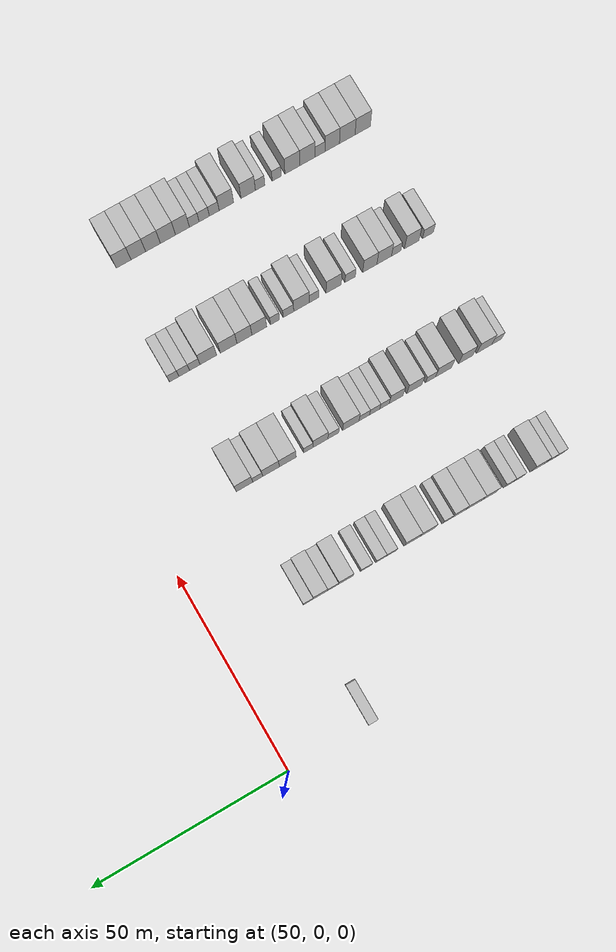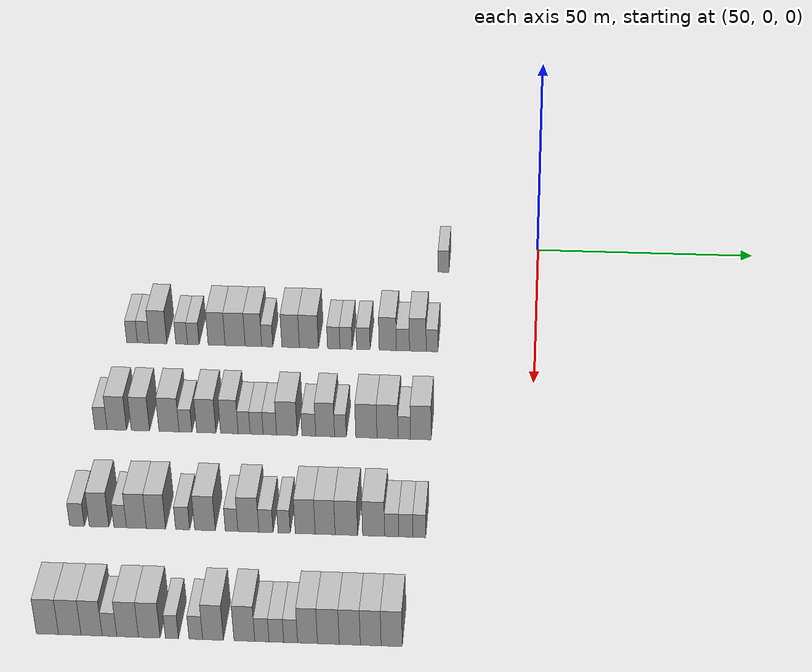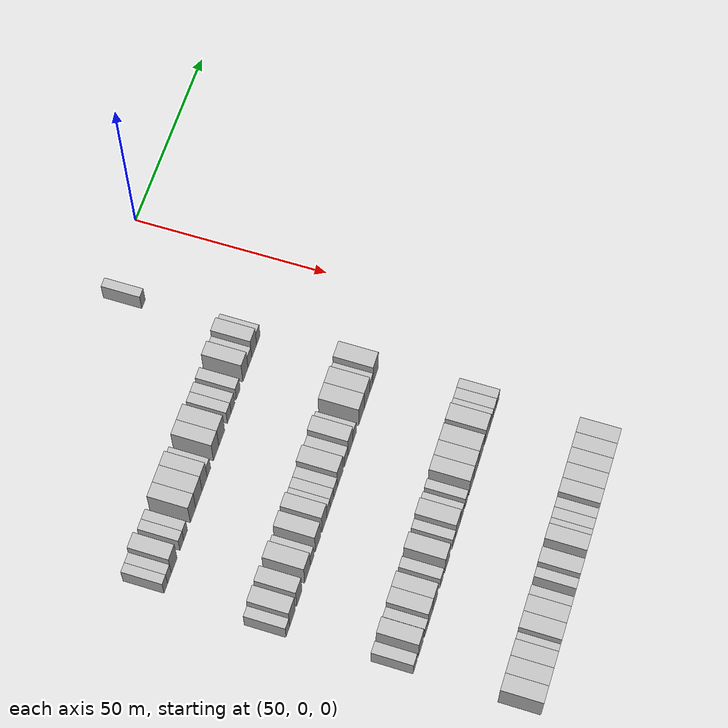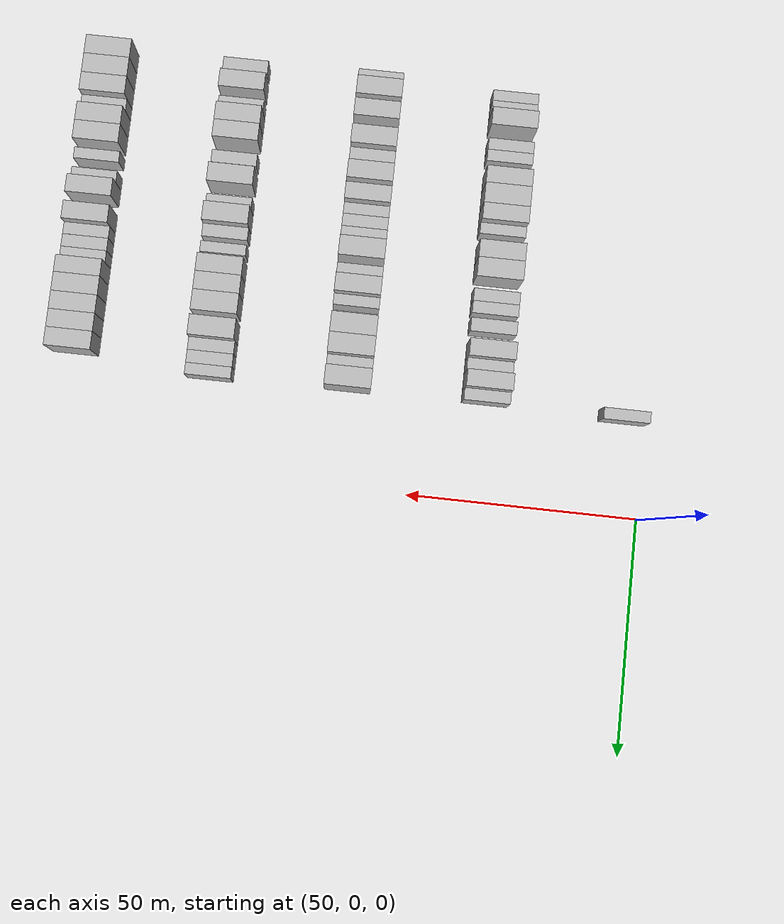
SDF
<sdf version="1.6">
 <world name="default">
  <model name="building_337">
   <static>1</static>
   <pose>55.0000 -21.7084 0 0.000000 0.000000 0.000000</pose>
   <link name="link">
    <pose>0 0 3.00 0 0 0</pose>
    <collision name="collision"><geometry><box><size>10.0000 2.4759 6.0000</size></box></geometry></collision>
    <visual name="visual">
     <cast_shadows>0</cast_shadows>
     <geometry><box><size>10.0000 2.4759 6.0000</size></box></geometry>
     <material>
      <script>
       <uri>model://HANNAS_wall/materials/scripts</uri>
       <uri>model://HANNAS_wall/materials/textures</uri>
       <name>vrc/HANNAS_wall</name>
      </script>
     </material>
    </visual>
   </link>
  </model>
  <model name="building_548">
   <static>1</static>
   <pose>85.0000 -89.1896 0 0.000000 0.000000 0.000000</pose>
   <link name="link">
    <pose>0 0 3.00 0 0 0</pose>
    <collision name="collision"><geometry><box><size>10.0000 2.4117 6.0000</size></box></geometry></collision>
    <visual name="visual">
     <cast_shadows>0</cast_shadows>
     <geometry><box><size>10.0000 2.4117 6.0000</size></box></geometry>
     <material>
      <script>
       <uri>model://HANNAS_wall/materials/scripts</uri>
       <uri>model://HANNAS_wall/materials/textures</uri>
       <name>vrc/HANNAS_wall</name>
      </script>
     </material>
    </visual>
   </link>
  </model>
  <model name="building_549">
   <static>1</static>
   <pose>85.0000 -86.6814 0 0.000000 0.000000 0.000000</pose>
   <link name="link">
    <pose>0 0 3.00 0 0 0</pose>
    <collision name="collision"><geometry><box><size>10.0000 2.6049 6.0000</size></box></geometry></collision>
    <visual name="visual">
     <cast_shadows>0</cast_shadows>
     <geometry><box><size>10.0000 2.6049 6.0000</size></box></geometry>
     <material>
      <script>
       <uri>model://HANNAS_wall/materials/scripts</uri>
       <uri>model://HANNAS_wall/materials/textures</uri>
       <name>vrc/HANNAS_wall</name>
      </script>
     </material>
    </visual>
   </link>
  </model>
  <model name="building_550">
   <static>1</static>
   <pose>85.0000 -83.4179 0 0.000000 0.000000 0.000000</pose>
   <link name="link">
    <pose>0 0 4.50 0 0 0</pose>
    <collision name="collision"><geometry><box><size>10.0000 3.9220 9.0000</size></box></geometry></collision>
    <visual name="visual">
     <cast_shadows>0</cast_shadows>
     <geometry><box><size>10.0000 3.9220 9.0000</size></box></geometry>
     <material>
      <script>
       <uri>model://HANNAS_wall/materials/scripts</uri>
       <uri>model://HANNAS_wall/materials/textures</uri>
       <name>vrc/HANNAS_wall</name>
      </script>
     </material>
    </visual>
   </link>
  </model>
  <model name="building_551">
   <static>1</static>
   <pose>85.0000 -78.1495 0 0.000000 0.000000 0.000000</pose>
   <link name="link">
    <pose>0 0 3.00 0 0 0</pose>
    <collision name="collision"><geometry><box><size>10.0000 2.6149 6.0000</size></box></geometry></collision>
    <visual name="visual">
     <cast_shadows>0</cast_shadows>
     <geometry><box><size>10.0000 2.6149 6.0000</size></box></geometry>
     <material>
      <script>
       <uri>model://HANNAS_wall/materials/scripts</uri>
       <uri>model://HANNAS_wall/materials/textures</uri>
       <name>vrc/HANNAS_wall</name>
      </script>
     </material>
    </visual>
   </link>
  </model>
  <model name="building_552">
   <static>1</static>
   <pose>85.0000 -75.5503 0 0.000000 0.000000 0.000000</pose>
   <link name="link">
    <pose>0 0 3.00 0 0 0</pose>
    <collision name="collision"><geometry><box><size>10.0000 2.5836 6.0000</size></box></geometry></collision>
    <visual name="visual">
     <cast_shadows>0</cast_shadows>
     <geometry><box><size>10.0000 2.5836 6.0000</size></box></geometry>
     <material>
      <script>
       <uri>model://HANNAS_wall/materials/scripts</uri>
       <uri>model://HANNAS_wall/materials/textures</uri>
       <name>vrc/HANNAS_wall</name>
      </script>
     </material>
    </visual>
   </link>
  </model>
  <model name="building_553">
   <static>1</static>
   <pose>85.0000 -70.3667 0 0.000000 0.000000 0.000000</pose>
   <link name="link">
    <pose>0 0 4.50 0 0 0</pose>
    <collision name="collision"><geometry><box><size>10.0000 3.7837 9.0000</size></box></geometry></collision>
    <visual name="visual">
     <cast_shadows>0</cast_shadows>
     <geometry><box><size>10.0000 3.7837 9.0000</size></box></geometry>
     <material>
      <script>
       <uri>model://HANNAS_wall/materials/scripts</uri>
       <uri>model://HANNAS_wall/materials/textures</uri>
       <name>vrc/HANNAS_wall</name>
      </script>
     </material>
    </visual>
   </link>
  </model>
  <model name="building_554">
   <static>1</static>
   <pose>85.0000 -66.2476 0 0.000000 0.000000 0.000000</pose>
   <link name="link">
    <pose>0 0 4.50 0 0 0</pose>
    <collision name="collision"><geometry><box><size>10.0000 4.4544 9.0000</size></box></geometry></collision>
    <visual name="visual">
     <cast_shadows>0</cast_shadows>
     <geometry><box><size>10.0000 4.4544 9.0000</size></box></geometry>
     <material>
      <script>
       <uri>model://HANNAS_wall/materials/scripts</uri>
       <uri>model://HANNAS_wall/materials/textures</uri>
       <name>vrc/HANNAS_wall</name>
      </script>
     </material>
    </visual>
   </link>
  </model>
  <model name="building_555">
   <static>1</static>
   <pose>85.0000 -62.1873 0 0.000000 0.000000 0.000000</pose>
   <link name="link">
    <pose>0 0 4.50 0 0 0</pose>
    <collision name="collision"><geometry><box><size>10.0000 3.6662 9.0000</size></box></geometry></collision>
    <visual name="visual">
     <cast_shadows>0</cast_shadows>
     <geometry><box><size>10.0000 3.6662 9.0000</size></box></geometry>
     <material>
      <script>
       <uri>model://HANNAS_wall/materials/scripts</uri>
       <uri>model://HANNAS_wall/materials/textures</uri>
       <name>vrc/HANNAS_wall</name>
      </script>
     </material>
    </visual>
   </link>
  </model>
  <model name="building_556">
   <static>1</static>
   <pose>85.0000 -59.1198 0 0.000000 0.000000 0.000000</pose>
   <link name="link">
    <pose>0 0 3.00 0 0 0</pose>
    <collision name="collision"><geometry><box><size>10.0000 2.4690 6.0000</size></box></geometry></collision>
    <visual name="visual">
     <cast_shadows>0</cast_shadows>
     <geometry><box><size>10.0000 2.4690 6.0000</size></box></geometry>
     <material>
      <script>
       <uri>model://HANNAS_wall/materials/scripts</uri>
       <uri>model://HANNAS_wall/materials/textures</uri>
       <name>vrc/HANNAS_wall</name>
      </script>
     </material>
    </visual>
   </link>
  </model>
  <model name="building_557">
   <static>1</static>
   <pose>85.0000 -53.9373 0 0.000000 0.000000 0.000000</pose>
   <link name="link">
    <pose>0 0 4.50 0 0 0</pose>
    <collision name="collision"><geometry><box><size>10.0000 3.8958 9.0000</size></box></geometry></collision>
    <visual name="visual">
     <cast_shadows>0</cast_shadows>
     <geometry><box><size>10.0000 3.8958 9.0000</size></box></geometry>
     <material>
      <script>
       <uri>model://HANNAS_wall/materials/scripts</uri>
       <uri>model://HANNAS_wall/materials/textures</uri>
       <name>vrc/HANNAS_wall</name>
      </script>
     </material>
    </visual>
   </link>
  </model>
  <model name="building_558">
   <static>1</static>
   <pose>85.0000 -49.8753 0 0.000000 0.000000 0.000000</pose>
   <link name="link">
    <pose>0 0 4.50 0 0 0</pose>
    <collision name="collision"><geometry><box><size>10.0000 4.2282 9.0000</size></box></geometry></collision>
    <visual name="visual">
     <cast_shadows>0</cast_shadows>
     <geometry><box><size>10.0000 4.2282 9.0000</size></box></geometry>
     <material>
      <script>
       <uri>model://HANNAS_wall/materials/scripts</uri>
       <uri>model://HANNAS_wall/materials/textures</uri>
       <name>vrc/HANNAS_wall</name>
      </script>
     </material>
    </visual>
   </link>
  </model>
  <model name="building_559">
   <static>1</static>
   <pose>85.0000 -44.3834 0 0.000000 0.000000 0.000000</pose>
   <link name="link">
    <pose>0 0 3.00 0 0 0</pose>
    <collision name="collision"><geometry><box><size>10.0000 2.7555 6.0000</size></box></geometry></collision>
    <visual name="visual">
     <cast_shadows>0</cast_shadows>
     <geometry><box><size>10.0000 2.7555 6.0000</size></box></geometry>
     <material>
      <script>
       <uri>model://HANNAS_wall/materials/scripts</uri>
       <uri>model://HANNAS_wall/materials/textures</uri>
       <name>vrc/HANNAS_wall</name>
      </script>
     </material>
    </visual>
   </link>
  </model>
  <model name="building_560">
   <static>1</static>
   <pose>85.0000 -41.6548 0 0.000000 0.000000 0.000000</pose>
   <link name="link">
    <pose>0 0 3.00 0 0 0</pose>
    <collision name="collision"><geometry><box><size>10.0000 2.7016 6.0000</size></box></geometry></collision>
    <visual name="visual">
     <cast_shadows>0</cast_shadows>
     <geometry><box><size>10.0000 2.7016 6.0000</size></box></geometry>
     <material>
      <script>
       <uri>model://HANNAS_wall/materials/scripts</uri>
       <uri>model://HANNAS_wall/materials/textures</uri>
       <name>vrc/HANNAS_wall</name>
      </script>
     </material>
    </visual>
   </link>
  </model>
  <model name="building_561">
   <static>1</static>
   <pose>85.0000 -37.8136 0 0.000000 0.000000 0.000000</pose>
   <link name="link">
    <pose>0 0 3.00 0 0 0</pose>
    <collision name="collision"><geometry><box><size>10.0000 2.9808 6.0000</size></box></geometry></collision>
    <visual name="visual">
     <cast_shadows>0</cast_shadows>
     <geometry><box><size>10.0000 2.9808 6.0000</size></box></geometry>
     <material>
      <script>
       <uri>model://HANNAS_wall/materials/scripts</uri>
       <uri>model://HANNAS_wall/materials/textures</uri>
       <name>vrc/HANNAS_wall</name>
      </script>
     </material>
    </visual>
   </link>
  </model>
  <model name="building_562">
   <static>1</static>
   <pose>85.0000 -32.4241 0 0.000000 0.000000 0.000000</pose>
   <link name="link">
    <pose>0 0 4.50 0 0 0</pose>
    <collision name="collision"><geometry><box><size>10.0000 3.7982 9.0000</size></box></geometry></collision>
    <visual name="visual">
     <cast_shadows>0</cast_shadows>
     <geometry><box><size>10.0000 3.7982 9.0000</size></box></geometry>
     <material>
      <script>
       <uri>model://HANNAS_wall/materials/scripts</uri>
       <uri>model://HANNAS_wall/materials/textures</uri>
       <name>vrc/HANNAS_wall</name>
      </script>
     </material>
    </visual>
   </link>
  </model>
  <model name="building_563">
   <static>1</static>
   <pose>85.0000 -29.0793 0 0.000000 0.000000 0.000000</pose>
   <link name="link">
    <pose>0 0 3.00 0 0 0</pose>
    <collision name="collision"><geometry><box><size>10.0000 2.8914 6.0000</size></box></geometry></collision>
    <visual name="visual">
     <cast_shadows>0</cast_shadows>
     <geometry><box><size>10.0000 2.8914 6.0000</size></box></geometry>
     <material>
      <script>
       <uri>model://HANNAS_wall/materials/scripts</uri>
       <uri>model://HANNAS_wall/materials/textures</uri>
       <name>vrc/HANNAS_wall</name>
      </script>
     </material>
    </visual>
   </link>
  </model>
  <model name="building_564">
   <static>1</static>
   <pose>85.0000 -25.7957 0 0.000000 0.000000 0.000000</pose>
   <link name="link">
    <pose>0 0 4.50 0 0 0</pose>
    <collision name="collision"><geometry><box><size>10.0000 3.6758 9.0000</size></box></geometry></collision>
    <visual name="visual">
     <cast_shadows>0</cast_shadows>
     <geometry><box><size>10.0000 3.6758 9.0000</size></box></geometry>
     <material>
      <script>
       <uri>model://HANNAS_wall/materials/scripts</uri>
       <uri>model://HANNAS_wall/materials/textures</uri>
       <name>vrc/HANNAS_wall</name>
      </script>
     </material>
    </visual>
   </link>
  </model>
  <model name="building_565">
   <static>1</static>
   <pose>85.0000 -22.6601 0 0.000000 0.000000 0.000000</pose>
   <link name="link">
    <pose>0 0 3.00 0 0 0</pose>
    <collision name="collision"><geometry><box><size>10.0000 2.5956 6.0000</size></box></geometry></collision>
    <visual name="visual">
     <cast_shadows>0</cast_shadows>
     <geometry><box><size>10.0000 2.5956 6.0000</size></box></geometry>
     <material>
      <script>
       <uri>model://HANNAS_wall/materials/scripts</uri>
       <uri>model://HANNAS_wall/materials/textures</uri>
       <name>vrc/HANNAS_wall</name>
      </script>
     </material>
    </visual>
   </link>
  </model>
  <model name="building_769">
   <static>1</static>
   <pose>115.0000 -90.7242 0 0.000000 0.000000 0.000000</pose>
   <link name="link">
    <pose>0 0 3.00 0 0 0</pose>
    <collision name="collision"><geometry><box><size>10.0000 2.6443 6.0000</size></box></geometry></collision>
    <visual name="visual">
     <cast_shadows>0</cast_shadows>
     <geometry><box><size>10.0000 2.6443 6.0000</size></box></geometry>
     <material>
      <script>
       <uri>model://HANNAS_wall/materials/scripts</uri>
       <uri>model://HANNAS_wall/materials/textures</uri>
       <name>vrc/HANNAS_wall</name>
      </script>
     </material>
    </visual>
   </link>
  </model>
  <model name="building_770">
   <static>1</static>
   <pose>115.0000 -87.3469 0 0.000000 0.000000 0.000000</pose>
   <link name="link">
    <pose>0 0 4.50 0 0 0</pose>
    <collision name="collision"><geometry><box><size>10.0000 4.1103 9.0000</size></box></geometry></collision>
    <visual name="visual">
     <cast_shadows>0</cast_shadows>
     <geometry><box><size>10.0000 4.1103 9.0000</size></box></geometry>
     <material>
      <script>
       <uri>model://HANNAS_wall/materials/scripts</uri>
       <uri>model://HANNAS_wall/materials/textures</uri>
       <name>vrc/HANNAS_wall</name>
      </script>
     </material>
    </visual>
   </link>
  </model>
  <model name="building_771">
   <static>1</static>
   <pose>115.0000 -82.3552 0 0.000000 0.000000 0.000000</pose>
   <link name="link">
    <pose>0 0 4.50 0 0 0</pose>
    <collision name="collision"><geometry><box><size>10.0000 3.8732 9.0000</size></box></geometry></collision>
    <visual name="visual">
     <cast_shadows>0</cast_shadows>
     <geometry><box><size>10.0000 3.8732 9.0000</size></box></geometry>
     <material>
      <script>
       <uri>model://HANNAS_wall/materials/scripts</uri>
       <uri>model://HANNAS_wall/materials/textures</uri>
       <name>vrc/HANNAS_wall</name>
      </script>
     </material>
    </visual>
   </link>
  </model>
  <model name="building_772">
   <static>1</static>
   <pose>115.0000 -76.2933 0 0.000000 0.000000 0.000000</pose>
   <link name="link">
    <pose>0 0 4.50 0 0 0</pose>
    <collision name="collision"><geometry><box><size>10.0000 4.2504 9.0000</size></box></geometry></collision>
    <visual name="visual">
     <cast_shadows>0</cast_shadows>
     <geometry><box><size>10.0000 4.2504 9.0000</size></box></geometry>
     <material>
      <script>
       <uri>model://HANNAS_wall/materials/scripts</uri>
       <uri>model://HANNAS_wall/materials/textures</uri>
       <name>vrc/HANNAS_wall</name>
      </script>
     </material>
    </visual>
   </link>
  </model>
  <model name="building_773">
   <static>1</static>
   <pose>115.0000 -72.8090 0 0.000000 0.000000 0.000000</pose>
   <link name="link">
    <pose>0 0 3.00 0 0 0</pose>
    <collision name="collision"><geometry><box><size>10.0000 2.7184 6.0000</size></box></geometry></collision>
    <visual name="visual">
     <cast_shadows>0</cast_shadows>
     <geometry><box><size>10.0000 2.7184 6.0000</size></box></geometry>
     <material>
      <script>
       <uri>model://HANNAS_wall/materials/scripts</uri>
       <uri>model://HANNAS_wall/materials/textures</uri>
       <name>vrc/HANNAS_wall</name>
      </script>
     </material>
    </visual>
   </link>
  </model>
  <model name="building_774">
   <static>1</static>
   <pose>115.0000 -68.4236 0 0.000000 0.000000 0.000000</pose>
   <link name="link">
    <pose>0 0 4.50 0 0 0</pose>
    <collision name="collision"><geometry><box><size>10.0000 4.0523 9.0000</size></box></geometry></collision>
    <visual name="visual">
     <cast_shadows>0</cast_shadows>
     <geometry><box><size>10.0000 4.0523 9.0000</size></box></geometry>
     <material>
      <script>
       <uri>model://HANNAS_wall/materials/scripts</uri>
       <uri>model://HANNAS_wall/materials/textures</uri>
       <name>vrc/HANNAS_wall</name>
      </script>
     </material>
    </visual>
   </link>
  </model>
  <model name="building_775">
   <static>1</static>
   <pose>115.0000 -63.5428 0 0.000000 0.000000 0.000000</pose>
   <link name="link">
    <pose>0 0 4.50 0 0 0</pose>
    <collision name="collision"><geometry><box><size>10.0000 3.7093 9.0000</size></box></geometry></collision>
    <visual name="visual">
     <cast_shadows>0</cast_shadows>
     <geometry><box><size>10.0000 3.7093 9.0000</size></box></geometry>
     <material>
      <script>
       <uri>model://HANNAS_wall/materials/scripts</uri>
       <uri>model://HANNAS_wall/materials/textures</uri>
       <name>vrc/HANNAS_wall</name>
      </script>
     </material>
    </visual>
   </link>
  </model>
  <model name="building_776">
   <static>1</static>
   <pose>115.0000 -60.4278 0 0.000000 0.000000 0.000000</pose>
   <link name="link">
    <pose>0 0 3.00 0 0 0</pose>
    <collision name="collision"><geometry><box><size>10.0000 2.5206 6.0000</size></box></geometry></collision>
    <visual name="visual">
     <cast_shadows>0</cast_shadows>
     <geometry><box><size>10.0000 2.5206 6.0000</size></box></geometry>
     <material>
      <script>
       <uri>model://HANNAS_wall/materials/scripts</uri>
       <uri>model://HANNAS_wall/materials/textures</uri>
       <name>vrc/HANNAS_wall</name>
      </script>
     </material>
    </visual>
   </link>
  </model>
  <model name="building_777">
   <static>1</static>
   <pose>115.0000 -57.7937 0 0.000000 0.000000 0.000000</pose>
   <link name="link">
    <pose>0 0 3.00 0 0 0</pose>
    <collision name="collision"><geometry><box><size>10.0000 2.7477 6.0000</size></box></geometry></collision>
    <visual name="visual">
     <cast_shadows>0</cast_shadows>
     <geometry><box><size>10.0000 2.7477 6.0000</size></box></geometry>
     <material>
      <script>
       <uri>model://HANNAS_wall/materials/scripts</uri>
       <uri>model://HANNAS_wall/materials/textures</uri>
       <name>vrc/HANNAS_wall</name>
      </script>
     </material>
    </visual>
   </link>
  </model>
  <model name="building_778">
   <static>1</static>
   <pose>115.0000 -55.0088 0 0.000000 0.000000 0.000000</pose>
   <link name="link">
    <pose>0 0 3.00 0 0 0</pose>
    <collision name="collision"><geometry><box><size>10.0000 2.8221 6.0000</size></box></geometry></collision>
    <visual name="visual">
     <cast_shadows>0</cast_shadows>
     <geometry><box><size>10.0000 2.8221 6.0000</size></box></geometry>
     <material>
      <script>
       <uri>model://HANNAS_wall/materials/scripts</uri>
       <uri>model://HANNAS_wall/materials/textures</uri>
       <name>vrc/HANNAS_wall</name>
      </script>
     </material>
    </visual>
   </link>
  </model>
  <model name="building_779">
   <static>1</static>
   <pose>115.0000 -51.4227 0 0.000000 0.000000 0.000000</pose>
   <link name="link">
    <pose>0 0 4.50 0 0 0</pose>
    <collision name="collision"><geometry><box><size>10.0000 4.3500 9.0000</size></box></geometry></collision>
    <visual name="visual">
     <cast_shadows>0</cast_shadows>
     <geometry><box><size>10.0000 4.3500 9.0000</size></box></geometry>
     <material>
      <script>
       <uri>model://HANNAS_wall/materials/scripts</uri>
       <uri>model://HANNAS_wall/materials/textures</uri>
       <name>vrc/HANNAS_wall</name>
      </script>
     </material>
    </visual>
   </link>
  </model>
  <model name="building_780">
   <static>1</static>
   <pose>115.0000 -46.7930 0 0.000000 0.000000 0.000000</pose>
   <link name="link">
    <pose>0 0 3.00 0 0 0</pose>
    <collision name="collision"><geometry><box><size>10.0000 2.9094 6.0000</size></box></geometry></collision>
    <visual name="visual">
     <cast_shadows>0</cast_shadows>
     <geometry><box><size>10.0000 2.9094 6.0000</size></box></geometry>
     <material>
      <script>
       <uri>model://HANNAS_wall/materials/scripts</uri>
       <uri>model://HANNAS_wall/materials/textures</uri>
       <name>vrc/HANNAS_wall</name>
      </script>
     </material>
    </visual>
   </link>
  </model>
  <model name="building_781">
   <static>1</static>
   <pose>115.0000 -43.3601 0 0.000000 0.000000 0.000000</pose>
   <link name="link">
    <pose>0 0 4.50 0 0 0</pose>
    <collision name="collision"><geometry><box><size>10.0000 3.9564 9.0000</size></box></geometry></collision>
    <visual name="visual">
     <cast_shadows>0</cast_shadows>
     <geometry><box><size>10.0000 3.9564 9.0000</size></box></geometry>
     <material>
      <script>
       <uri>model://HANNAS_wall/materials/scripts</uri>
       <uri>model://HANNAS_wall/materials/textures</uri>
       <name>vrc/HANNAS_wall</name>
      </script>
     </material>
    </visual>
   </link>
  </model>
  <model name="building_782">
   <static>1</static>
   <pose>115.0000 -40.1500 0 0.000000 0.000000 0.000000</pose>
   <link name="link">
    <pose>0 0 3.00 0 0 0</pose>
    <collision name="collision"><geometry><box><size>10.0000 2.4639 6.0000</size></box></geometry></collision>
    <visual name="visual">
     <cast_shadows>0</cast_shadows>
     <geometry><box><size>10.0000 2.4639 6.0000</size></box></geometry>
     <material>
      <script>
       <uri>model://HANNAS_wall/materials/scripts</uri>
       <uri>model://HANNAS_wall/materials/textures</uri>
       <name>vrc/HANNAS_wall</name>
      </script>
     </material>
    </visual>
   </link>
  </model>
  <model name="building_783">
   <static>1</static>
   <pose>115.0000 -34.6927 0 0.000000 0.000000 0.000000</pose>
   <link name="link">
    <pose>0 0 4.50 0 0 0</pose>
    <collision name="collision"><geometry><box><size>10.0000 4.4506 9.0000</size></box></geometry></collision>
    <visual name="visual">
     <cast_shadows>0</cast_shadows>
     <geometry><box><size>10.0000 4.4506 9.0000</size></box></geometry>
     <material>
      <script>
       <uri>model://HANNAS_wall/materials/scripts</uri>
       <uri>model://HANNAS_wall/materials/textures</uri>
       <name>vrc/HANNAS_wall</name>
      </script>
     </material>
    </visual>
   </link>
  </model>
  <model name="building_784">
   <static>1</static>
   <pose>115.0000 -30.2590 0 0.000000 0.000000 0.000000</pose>
   <link name="link">
    <pose>0 0 4.50 0 0 0</pose>
    <collision name="collision"><geometry><box><size>10.0000 4.4168 9.0000</size></box></geometry></collision>
    <visual name="visual">
     <cast_shadows>0</cast_shadows>
     <geometry><box><size>10.0000 4.4168 9.0000</size></box></geometry>
     <material>
      <script>
       <uri>model://HANNAS_wall/materials/scripts</uri>
       <uri>model://HANNAS_wall/materials/textures</uri>
       <name>vrc/HANNAS_wall</name>
      </script>
     </material>
    </visual>
   </link>
  </model>
  <model name="building_785">
   <static>1</static>
   <pose>115.0000 -26.7469 0 0.000000 0.000000 0.000000</pose>
   <link name="link">
    <pose>0 0 3.00 0 0 0</pose>
    <collision name="collision"><geometry><box><size>10.0000 2.6075 6.0000</size></box></geometry></collision>
    <visual name="visual">
     <cast_shadows>0</cast_shadows>
     <geometry><box><size>10.0000 2.6075 6.0000</size></box></geometry>
     <material>
      <script>
       <uri>model://HANNAS_wall/materials/scripts</uri>
       <uri>model://HANNAS_wall/materials/textures</uri>
       <name>vrc/HANNAS_wall</name>
      </script>
     </material>
    </visual>
   </link>
  </model>
  <model name="building_786">
   <static>1</static>
   <pose>115.0000 -23.2766 0 0.000000 0.000000 0.000000</pose>
   <link name="link">
    <pose>0 0 4.50 0 0 0</pose>
    <collision name="collision"><geometry><box><size>10.0000 4.3331 9.0000</size></box></geometry></collision>
    <visual name="visual">
     <cast_shadows>0</cast_shadows>
     <geometry><box><size>10.0000 4.3331 9.0000</size></box></geometry>
     <material>
      <script>
       <uri>model://HANNAS_wall/materials/scripts</uri>
       <uri>model://HANNAS_wall/materials/textures</uri>
       <name>vrc/HANNAS_wall</name>
      </script>
     </material>
    </visual>
   </link>
  </model>
  <model name="building_1003">
   <static>1</static>
   <pose>145.0000 -90.1054 0 0.000000 0.000000 0.000000</pose>
   <link name="link">
    <pose>0 0 3.00 0 0 0</pose>
    <collision name="collision"><geometry><box><size>10.0000 2.9595 6.0000</size></box></geometry></collision>
    <visual name="visual">
     <cast_shadows>0</cast_shadows>
     <geometry><box><size>10.0000 2.9595 6.0000</size></box></geometry>
     <material>
      <script>
       <uri>model://HANNAS_wall/materials/scripts</uri>
       <uri>model://HANNAS_wall/materials/textures</uri>
       <name>vrc/HANNAS_wall</name>
      </script>
     </material>
    </visual>
   </link>
  </model>
  <model name="building_1004">
   <static>1</static>
   <pose>145.0000 -85.6551 0 0.000000 0.000000 0.000000</pose>
   <link name="link">
    <pose>0 0 4.50 0 0 0</pose>
    <collision name="collision"><geometry><box><size>10.0000 3.9411 9.0000</size></box></geometry></collision>
    <visual name="visual">
     <cast_shadows>0</cast_shadows>
     <geometry><box><size>10.0000 3.9411 9.0000</size></box></geometry>
     <material>
      <script>
       <uri>model://HANNAS_wall/materials/scripts</uri>
       <uri>model://HANNAS_wall/materials/textures</uri>
       <name>vrc/HANNAS_wall</name>
      </script>
     </material>
    </visual>
   </link>
  </model>
  <model name="building_1005">
   <static>1</static>
   <pose>145.0000 -81.4256 0 0.000000 0.000000 0.000000</pose>
   <link name="link">
    <pose>0 0 3.00 0 0 0</pose>
    <collision name="collision"><geometry><box><size>10.0000 2.5178 6.0000</size></box></geometry></collision>
    <visual name="visual">
     <cast_shadows>0</cast_shadows>
     <geometry><box><size>10.0000 2.5178 6.0000</size></box></geometry>
     <material>
      <script>
       <uri>model://HANNAS_wall/materials/scripts</uri>
       <uri>model://HANNAS_wall/materials/textures</uri>
       <name>vrc/HANNAS_wall</name>
      </script>
     </material>
    </visual>
   </link>
  </model>
  <model name="building_1006">
   <static>1</static>
   <pose>145.0000 -78.1623 0 0.000000 0.000000 0.000000</pose>
   <link name="link">
    <pose>0 0 4.50 0 0 0</pose>
    <collision name="collision"><geometry><box><size>10.0000 4.0089 9.0000</size></box></geometry></collision>
    <visual name="visual">
     <cast_shadows>0</cast_shadows>
     <geometry><box><size>10.0000 4.0089 9.0000</size></box></geometry>
     <material>
      <script>
       <uri>model://HANNAS_wall/materials/scripts</uri>
       <uri>model://HANNAS_wall/materials/textures</uri>
       <name>vrc/HANNAS_wall</name>
      </script>
     </material>
    </visual>
   </link>
  </model>
  <model name="building_1007">
   <static>1</static>
   <pose>145.0000 -74.2356 0 0.000000 0.000000 0.000000</pose>
   <link name="link">
    <pose>0 0 4.50 0 0 0</pose>
    <collision name="collision"><geometry><box><size>10.0000 3.8443 9.0000</size></box></geometry></collision>
    <visual name="visual">
     <cast_shadows>0</cast_shadows>
     <geometry><box><size>10.0000 3.8443 9.0000</size></box></geometry>
     <material>
      <script>
       <uri>model://HANNAS_wall/materials/scripts</uri>
       <uri>model://HANNAS_wall/materials/textures</uri>
       <name>vrc/HANNAS_wall</name>
      </script>
     </material>
    </visual>
   </link>
  </model>
  <model name="building_1008">
   <static>1</static>
   <pose>145.0000 -68.9053 0 0.000000 0.000000 0.000000</pose>
   <link name="link">
    <pose>0 0 3.00 0 0 0</pose>
    <collision name="collision"><geometry><box><size>10.0000 2.8164 6.0000</size></box></geometry></collision>
    <visual name="visual">
     <cast_shadows>0</cast_shadows>
     <geometry><box><size>10.0000 2.8164 6.0000</size></box></geometry>
     <material>
      <script>
       <uri>model://HANNAS_wall/materials/scripts</uri>
       <uri>model://HANNAS_wall/materials/textures</uri>
       <name>vrc/HANNAS_wall</name>
      </script>
     </material>
    </visual>
   </link>
  </model>
  <model name="building_1009">
   <static>1</static>
   <pose>145.0000 -64.4372 0 0.000000 0.000000 0.000000</pose>
   <link name="link">
    <pose>0 0 4.50 0 0 0</pose>
    <collision name="collision"><geometry><box><size>10.0000 4.1198 9.0000</size></box></geometry></collision>
    <visual name="visual">
     <cast_shadows>0</cast_shadows>
     <geometry><box><size>10.0000 4.1198 9.0000</size></box></geometry>
     <material>
      <script>
       <uri>model://HANNAS_wall/materials/scripts</uri>
       <uri>model://HANNAS_wall/materials/textures</uri>
       <name>vrc/HANNAS_wall</name>
      </script>
     </material>
    </visual>
   </link>
  </model>
  <model name="building_1010">
   <static>1</static>
   <pose>145.0000 -59.1214 0 0.000000 0.000000 0.000000</pose>
   <link name="link">
    <pose>0 0 3.00 0 0 0</pose>
    <collision name="collision"><geometry><box><size>10.0000 2.5118 6.0000</size></box></geometry></collision>
    <visual name="visual">
     <cast_shadows>0</cast_shadows>
     <geometry><box><size>10.0000 2.5118 6.0000</size></box></geometry>
     <material>
      <script>
       <uri>model://HANNAS_wall/materials/scripts</uri>
       <uri>model://HANNAS_wall/materials/textures</uri>
       <name>vrc/HANNAS_wall</name>
      </script>
     </material>
    </visual>
   </link>
  </model>
  <model name="building_1011">
   <static>1</static>
   <pose>145.0000 -55.7677 0 0.000000 0.000000 0.000000</pose>
   <link name="link">
    <pose>0 0 4.50 0 0 0</pose>
    <collision name="collision"><geometry><box><size>10.0000 4.1957 9.0000</size></box></geometry></collision>
    <visual name="visual">
     <cast_shadows>0</cast_shadows>
     <geometry><box><size>10.0000 4.1957 9.0000</size></box></geometry>
     <material>
      <script>
       <uri>model://HANNAS_wall/materials/scripts</uri>
       <uri>model://HANNAS_wall/materials/textures</uri>
       <name>vrc/HANNAS_wall</name>
      </script>
     </material>
    </visual>
   </link>
  </model>
  <model name="building_1012">
   <static>1</static>
   <pose>145.0000 -52.2485 0 0.000000 0.000000 0.000000</pose>
   <link name="link">
    <pose>0 0 3.00 0 0 0</pose>
    <collision name="collision"><geometry><box><size>10.0000 2.8428 6.0000</size></box></geometry></collision>
    <visual name="visual">
     <cast_shadows>0</cast_shadows>
     <geometry><box><size>10.0000 2.8428 6.0000</size></box></geometry>
     <material>
      <script>
       <uri>model://HANNAS_wall/materials/scripts</uri>
       <uri>model://HANNAS_wall/materials/textures</uri>
       <name>vrc/HANNAS_wall</name>
      </script>
     </material>
    </visual>
   </link>
  </model>
  <model name="building_1013">
   <static>1</static>
   <pose>145.0000 -48.6160 0 0.000000 0.000000 0.000000</pose>
   <link name="link">
    <pose>0 0 3.00 0 0 0</pose>
    <collision name="collision"><geometry><box><size>10.0000 2.4222 6.0000</size></box></geometry></collision>
    <visual name="visual">
     <cast_shadows>0</cast_shadows>
     <geometry><box><size>10.0000 2.4222 6.0000</size></box></geometry>
     <material>
      <script>
       <uri>model://HANNAS_wall/materials/scripts</uri>
       <uri>model://HANNAS_wall/materials/textures</uri>
       <name>vrc/HANNAS_wall</name>
      </script>
     </material>
    </visual>
   </link>
  </model>
  <model name="building_1014">
   <static>1</static>
   <pose>145.0000 -44.4200 0 0.000000 0.000000 0.000000</pose>
   <link name="link">
    <pose>0 0 4.50 0 0 0</pose>
    <collision name="collision"><geometry><box><size>10.0000 3.9698 9.0000</size></box></geometry></collision>
    <visual name="visual">
     <cast_shadows>0</cast_shadows>
     <geometry><box><size>10.0000 3.9698 9.0000</size></box></geometry>
     <material>
      <script>
       <uri>model://HANNAS_wall/materials/scripts</uri>
       <uri>model://HANNAS_wall/materials/textures</uri>
       <name>vrc/HANNAS_wall</name>
      </script>
     </material>
    </visual>
   </link>
  </model>
  <model name="building_1015">
   <static>1</static>
   <pose>145.0000 -40.4442 0 0.000000 0.000000 0.000000</pose>
   <link name="link">
    <pose>0 0 4.50 0 0 0</pose>
    <collision name="collision"><geometry><box><size>10.0000 3.9819 9.0000</size></box></geometry></collision>
    <visual name="visual">
     <cast_shadows>0</cast_shadows>
     <geometry><box><size>10.0000 3.9819 9.0000</size></box></geometry>
     <material>
      <script>
       <uri>model://HANNAS_wall/materials/scripts</uri>
       <uri>model://HANNAS_wall/materials/textures</uri>
       <name>vrc/HANNAS_wall</name>
      </script>
     </material>
    </visual>
   </link>
  </model>
  <model name="building_1016">
   <static>1</static>
   <pose>145.0000 -36.2183 0 0.000000 0.000000 0.000000</pose>
   <link name="link">
    <pose>0 0 4.50 0 0 0</pose>
    <collision name="collision"><geometry><box><size>10.0000 4.4697 9.0000</size></box></geometry></collision>
    <visual name="visual">
     <cast_shadows>0</cast_shadows>
     <geometry><box><size>10.0000 4.4697 9.0000</size></box></geometry>
     <material>
      <script>
       <uri>model://HANNAS_wall/materials/scripts</uri>
       <uri>model://HANNAS_wall/materials/textures</uri>
       <name>vrc/HANNAS_wall</name>
      </script>
     </material>
    </visual>
   </link>
  </model>
  <model name="building_1017">
   <static>1</static>
   <pose>145.0000 -30.7825 0 0.000000 0.000000 0.000000</pose>
   <link name="link">
    <pose>0 0 4.50 0 0 0</pose>
    <collision name="collision"><geometry><box><size>10.0000 4.4020 9.0000</size></box></geometry></collision>
    <visual name="visual">
     <cast_shadows>0</cast_shadows>
     <geometry><box><size>10.0000 4.4020 9.0000</size></box></geometry>
     <material>
      <script>
       <uri>model://HANNAS_wall/materials/scripts</uri>
       <uri>model://HANNAS_wall/materials/textures</uri>
       <name>vrc/HANNAS_wall</name>
      </script>
     </material>
    </visual>
   </link>
  </model>
  <model name="building_1018">
   <static>1</static>
   <pose>145.0000 -27.1862 0 0.000000 0.000000 0.000000</pose>
   <link name="link">
    <pose>0 0 3.00 0 0 0</pose>
    <collision name="collision"><geometry><box><size>10.0000 2.7906 6.0000</size></box></geometry></collision>
    <visual name="visual">
     <cast_shadows>0</cast_shadows>
     <geometry><box><size>10.0000 2.7906 6.0000</size></box></geometry>
     <material>
      <script>
       <uri>model://HANNAS_wall/materials/scripts</uri>
       <uri>model://HANNAS_wall/materials/textures</uri>
       <name>vrc/HANNAS_wall</name>
      </script>
     </material>
    </visual>
   </link>
  </model>
  <model name="building_1019">
   <static>1</static>
   <pose>145.0000 -24.3757 0 0.000000 0.000000 0.000000</pose>
   <link name="link">
    <pose>0 0 3.00 0 0 0</pose>
    <collision name="collision"><geometry><box><size>10.0000 2.8304 6.0000</size></box></geometry></collision>
    <visual name="visual">
     <cast_shadows>0</cast_shadows>
     <geometry><box><size>10.0000 2.8304 6.0000</size></box></geometry>
     <material>
      <script>
       <uri>model://HANNAS_wall/materials/scripts</uri>
       <uri>model://HANNAS_wall/materials/textures</uri>
       <name>vrc/HANNAS_wall</name>
      </script>
     </material>
    </visual>
   </link>
  </model>
  <model name="building_1020">
   <static>1</static>
   <pose>145.0000 -21.7026 0 0.000000 0.000000 0.000000</pose>
   <link name="link">
    <pose>0 0 3.00 0 0 0</pose>
    <collision name="collision"><geometry><box><size>10.0000 2.5158 6.0000</size></box></geometry></collision>
    <visual name="visual">
     <cast_shadows>0</cast_shadows>
     <geometry><box><size>10.0000 2.5158 6.0000</size></box></geometry>
     <material>
      <script>
       <uri>model://HANNAS_wall/materials/scripts</uri>
       <uri>model://HANNAS_wall/materials/textures</uri>
       <name>vrc/HANNAS_wall</name>
      </script>
     </material>
    </visual>
   </link>
  </model>
  <model name="building_1235">
   <static>1</static>
   <pose>175.0000 -90.0143 0 0.000000 0.000000 0.000000</pose>
   <link name="link">
    <pose>0 0 4.50 0 0 0</pose>
    <collision name="collision"><geometry><box><size>10.0000 4.2023 9.0000</size></box></geometry></collision>
    <visual name="visual">
     <cast_shadows>0</cast_shadows>
     <geometry><box><size>10.0000 4.2023 9.0000</size></box></geometry>
     <material>
      <script>
       <uri>model://HANNAS_wall/materials/scripts</uri>
       <uri>model://HANNAS_wall/materials/textures</uri>
       <name>vrc/HANNAS_wall</name>
      </script>
     </material>
    </visual>
   </link>
  </model>
  <model name="building_1236">
   <static>1</static>
   <pose>175.0000 -85.7702 0 0.000000 0.000000 0.000000</pose>
   <link name="link">
    <pose>0 0 4.50 0 0 0</pose>
    <collision name="collision"><geometry><box><size>10.0000 4.2858 9.0000</size></box></geometry></collision>
    <visual name="visual">
     <cast_shadows>0</cast_shadows>
     <geometry><box><size>10.0000 4.2858 9.0000</size></box></geometry>
     <material>
      <script>
       <uri>model://HANNAS_wall/materials/scripts</uri>
       <uri>model://HANNAS_wall/materials/textures</uri>
       <name>vrc/HANNAS_wall</name>
      </script>
     </material>
    </visual>
   </link>
  </model>
  <model name="building_1237">
   <static>1</static>
   <pose>175.0000 -81.6276 0 0.000000 0.000000 0.000000</pose>
   <link name="link">
    <pose>0 0 4.50 0 0 0</pose>
    <collision name="collision"><geometry><box><size>10.0000 3.9993 9.0000</size></box></geometry></collision>
    <visual name="visual">
     <cast_shadows>0</cast_shadows>
     <geometry><box><size>10.0000 3.9993 9.0000</size></box></geometry>
     <material>
      <script>
       <uri>model://HANNAS_wall/materials/scripts</uri>
       <uri>model://HANNAS_wall/materials/textures</uri>
       <name>vrc/HANNAS_wall</name>
      </script>
     </material>
    </visual>
   </link>
  </model>
  <model name="building_1238">
   <static>1</static>
   <pose>175.0000 -78.2489 0 0.000000 0.000000 0.000000</pose>
   <link name="link">
    <pose>0 0 3.00 0 0 0</pose>
    <collision name="collision"><geometry><box><size>10.0000 2.7582 6.0000</size></box></geometry></collision>
    <visual name="visual">
     <cast_shadows>0</cast_shadows>
     <geometry><box><size>10.0000 2.7582 6.0000</size></box></geometry>
     <material>
      <script>
       <uri>model://HANNAS_wall/materials/scripts</uri>
       <uri>model://HANNAS_wall/materials/textures</uri>
       <name>vrc/HANNAS_wall</name>
      </script>
     </material>
    </visual>
   </link>
  </model>
  <model name="building_1239">
   <static>1</static>
   <pose>175.0000 -74.8119 0 0.000000 0.000000 0.000000</pose>
   <link name="link">
    <pose>0 0 4.50 0 0 0</pose>
    <collision name="collision"><geometry><box><size>10.0000 4.1159 9.0000</size></box></geometry></collision>
    <visual name="visual">
     <cast_shadows>0</cast_shadows>
     <geometry><box><size>10.0000 4.1159 9.0000</size></box></geometry>
     <material>
      <script>
       <uri>model://HANNAS_wall/materials/scripts</uri>
       <uri>model://HANNAS_wall/materials/textures</uri>
       <name>vrc/HANNAS_wall</name>
      </script>
     </material>
    </visual>
   </link>
  </model>
  <model name="building_1240">
   <static>1</static>
   <pose>175.0000 -70.7036 0 0.000000 0.000000 0.000000</pose>
   <link name="link">
    <pose>0 0 4.50 0 0 0</pose>
    <collision name="collision"><geometry><box><size>10.0000 4.1007 9.0000</size></box></geometry></collision>
    <visual name="visual">
     <cast_shadows>0</cast_shadows>
     <geometry><box><size>10.0000 4.1007 9.0000</size></box></geometry>
     <material>
      <script>
       <uri>model://HANNAS_wall/materials/scripts</uri>
       <uri>model://HANNAS_wall/materials/textures</uri>
       <name>vrc/HANNAS_wall</name>
      </script>
     </material>
    </visual>
   </link>
  </model>
  <model name="building_1241">
   <static>1</static>
   <pose>175.0000 -66.4216 0 0.000000 0.000000 0.000000</pose>
   <link name="link">
    <pose>0 0 3.00 0 0 0</pose>
    <collision name="collision"><geometry><box><size>10.0000 2.4631 6.0000</size></box></geometry></collision>
    <visual name="visual">
     <cast_shadows>0</cast_shadows>
     <geometry><box><size>10.0000 2.4631 6.0000</size></box></geometry>
     <material>
      <script>
       <uri>model://HANNAS_wall/materials/scripts</uri>
       <uri>model://HANNAS_wall/materials/textures</uri>
       <name>vrc/HANNAS_wall</name>
      </script>
     </material>
    </visual>
   </link>
  </model>
  <model name="building_1242">
   <static>1</static>
   <pose>175.0000 -61.8990 0 0.000000 0.000000 0.000000</pose>
   <link name="link">
    <pose>0 0 3.00 0 0 0</pose>
    <collision name="collision"><geometry><box><size>10.0000 2.5822 6.0000</size></box></geometry></collision>
    <visual name="visual">
     <cast_shadows>0</cast_shadows>
     <geometry><box><size>10.0000 2.5822 6.0000</size></box></geometry>
     <material>
      <script>
       <uri>model://HANNAS_wall/materials/scripts</uri>
       <uri>model://HANNAS_wall/materials/textures</uri>
       <name>vrc/HANNAS_wall</name>
      </script>
     </material>
    </visual>
   </link>
  </model>
  <model name="building_1243">
   <static>1</static>
   <pose>175.0000 -58.6522 0 0.000000 0.000000 0.000000</pose>
   <link name="link">
    <pose>0 0 4.50 0 0 0</pose>
    <collision name="collision"><geometry><box><size>10.0000 3.9114 9.0000</size></box></geometry></collision>
    <visual name="visual">
     <cast_shadows>0</cast_shadows>
     <geometry><box><size>10.0000 3.9114 9.0000</size></box></geometry>
     <material>
      <script>
       <uri>model://HANNAS_wall/materials/scripts</uri>
       <uri>model://HANNAS_wall/materials/textures</uri>
       <name>vrc/HANNAS_wall</name>
      </script>
     </material>
    </visual>
   </link>
  </model>
  <model name="building_1244">
   <static>1</static>
   <pose>175.0000 -52.7327 0 0.000000 0.000000 0.000000</pose>
   <link name="link">
    <pose>0 0 4.50 0 0 0</pose>
    <collision name="collision"><geometry><box><size>10.0000 3.9277 9.0000</size></box></geometry></collision>
    <visual name="visual">
     <cast_shadows>0</cast_shadows>
     <geometry><box><size>10.0000 3.9277 9.0000</size></box></geometry>
     <material>
      <script>
       <uri>model://HANNAS_wall/materials/scripts</uri>
       <uri>model://HANNAS_wall/materials/textures</uri>
       <name>vrc/HANNAS_wall</name>
      </script>
     </material>
    </visual>
   </link>
  </model>
  <model name="building_1245">
   <static>1</static>
   <pose>175.0000 -49.4325 0 0.000000 0.000000 0.000000</pose>
   <link name="link">
    <pose>0 0 3.00 0 0 0</pose>
    <collision name="collision"><geometry><box><size>10.0000 2.6727 6.0000</size></box></geometry></collision>
    <visual name="visual">
     <cast_shadows>0</cast_shadows>
     <geometry><box><size>10.0000 2.6727 6.0000</size></box></geometry>
     <material>
      <script>
       <uri>model://HANNAS_wall/materials/scripts</uri>
       <uri>model://HANNAS_wall/materials/textures</uri>
       <name>vrc/HANNAS_wall</name>
      </script>
     </material>
    </visual>
   </link>
  </model>
  <model name="building_1246">
   <static>1</static>
   <pose>175.0000 -46.7112 0 0.000000 0.000000 0.000000</pose>
   <link name="link">
    <pose>0 0 3.00 0 0 0</pose>
    <collision name="collision"><geometry><box><size>10.0000 2.7698 6.0000</size></box></geometry></collision>
    <visual name="visual">
     <cast_shadows>0</cast_shadows>
     <geometry><box><size>10.0000 2.7698 6.0000</size></box></geometry>
     <material>
      <script>
       <uri>model://HANNAS_wall/materials/scripts</uri>
       <uri>model://HANNAS_wall/materials/textures</uri>
       <name>vrc/HANNAS_wall</name>
      </script>
     </material>
    </visual>
   </link>
  </model>
  <model name="building_1247">
   <static>1</static>
   <pose>175.0000 -44.0212 0 0.000000 0.000000 0.000000</pose>
   <link name="link">
    <pose>0 0 3.00 0 0 0</pose>
    <collision name="collision"><geometry><box><size>10.0000 2.6101 6.0000</size></box></geometry></collision>
    <visual name="visual">
     <cast_shadows>0</cast_shadows>
     <geometry><box><size>10.0000 2.6101 6.0000</size></box></geometry>
     <material>
      <script>
       <uri>model://HANNAS_wall/materials/scripts</uri>
       <uri>model://HANNAS_wall/materials/textures</uri>
       <name>vrc/HANNAS_wall</name>
      </script>
     </material>
    </visual>
   </link>
  </model>
  <model name="building_1248">
   <static>1</static>
   <pose>175.0000 -40.8452 0 0.000000 0.000000 0.000000</pose>
   <link name="link">
    <pose>0 0 4.50 0 0 0</pose>
    <collision name="collision"><geometry><box><size>10.0000 3.7419 9.0000</size></box></geometry></collision>
    <visual name="visual">
     <cast_shadows>0</cast_shadows>
     <geometry><box><size>10.0000 3.7419 9.0000</size></box></geometry>
     <material>
      <script>
       <uri>model://HANNAS_wall/materials/scripts</uri>
       <uri>model://HANNAS_wall/materials/textures</uri>
       <name>vrc/HANNAS_wall</name>
      </script>
     </material>
    </visual>
   </link>
  </model>
  <model name="building_1249">
   <static>1</static>
   <pose>175.0000 -36.9232 0 0.000000 0.000000 0.000000</pose>
   <link name="link">
    <pose>0 0 4.50 0 0 0</pose>
    <collision name="collision"><geometry><box><size>10.0000 4.1022 9.0000</size></box></geometry></collision>
    <visual name="visual">
     <cast_shadows>0</cast_shadows>
     <geometry><box><size>10.0000 4.1022 9.0000</size></box></geometry>
     <material>
      <script>
       <uri>model://HANNAS_wall/materials/scripts</uri>
       <uri>model://HANNAS_wall/materials/textures</uri>
       <name>vrc/HANNAS_wall</name>
      </script>
     </material>
    </visual>
   </link>
  </model>
  <model name="building_1250">
   <static>1</static>
   <pose>175.0000 -32.8925 0 0.000000 0.000000 0.000000</pose>
   <link name="link">
    <pose>0 0 4.50 0 0 0</pose>
    <collision name="collision"><geometry><box><size>10.0000 3.9592 9.0000</size></box></geometry></collision>
    <visual name="visual">
     <cast_shadows>0</cast_shadows>
     <geometry><box><size>10.0000 3.9592 9.0000</size></box></geometry>
     <material>
      <script>
       <uri>model://HANNAS_wall/materials/scripts</uri>
       <uri>model://HANNAS_wall/materials/textures</uri>
       <name>vrc/HANNAS_wall</name>
      </script>
     </material>
    </visual>
   </link>
  </model>
  <model name="building_1251">
   <static>1</static>
   <pose>175.0000 -28.9584 0 0.000000 0.000000 0.000000</pose>
   <link name="link">
    <pose>0 0 4.50 0 0 0</pose>
    <collision name="collision"><geometry><box><size>10.0000 3.9090 9.0000</size></box></geometry></collision>
    <visual name="visual">
     <cast_shadows>0</cast_shadows>
     <geometry><box><size>10.0000 3.9090 9.0000</size></box></geometry>
     <material>
      <script>
       <uri>model://HANNAS_wall/materials/scripts</uri>
       <uri>model://HANNAS_wall/materials/textures</uri>
       <name>vrc/HANNAS_wall</name>
      </script>
     </material>
    </visual>
   </link>
  </model>
  <model name="building_1252">
   <static>1</static>
   <pose>175.0000 -25.0204 0 0.000000 0.000000 0.000000</pose>
   <link name="link">
    <pose>0 0 4.50 0 0 0</pose>
    <collision name="collision"><geometry><box><size>10.0000 3.9670 9.0000</size></box></geometry></collision>
    <visual name="visual">
     <cast_shadows>0</cast_shadows>
     <geometry><box><size>10.0000 3.9670 9.0000</size></box></geometry>
     <material>
      <script>
       <uri>model://HANNAS_wall/materials/scripts</uri>
       <uri>model://HANNAS_wall/materials/textures</uri>
       <name>vrc/HANNAS_wall</name>
      </script>
     </material>
    </visual>
   </link>
  </model>
 </world>
</sdf>
